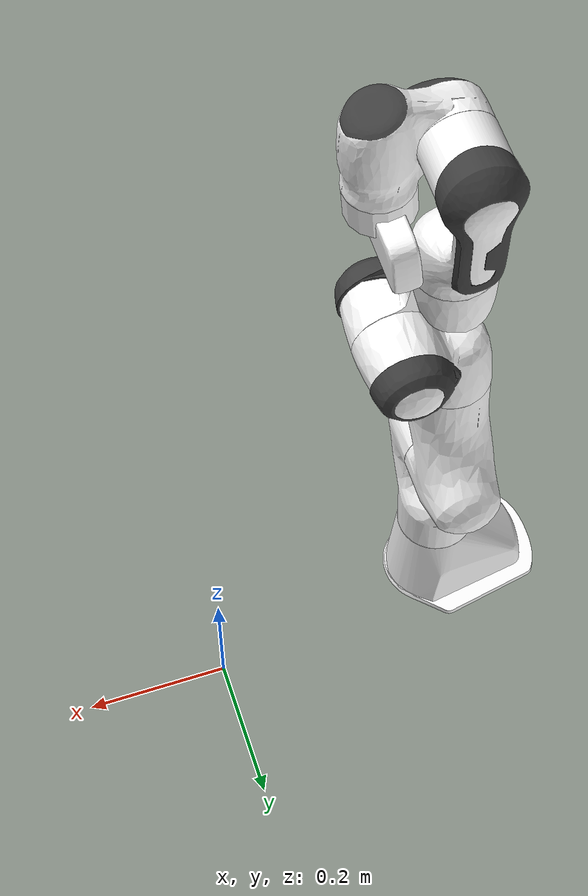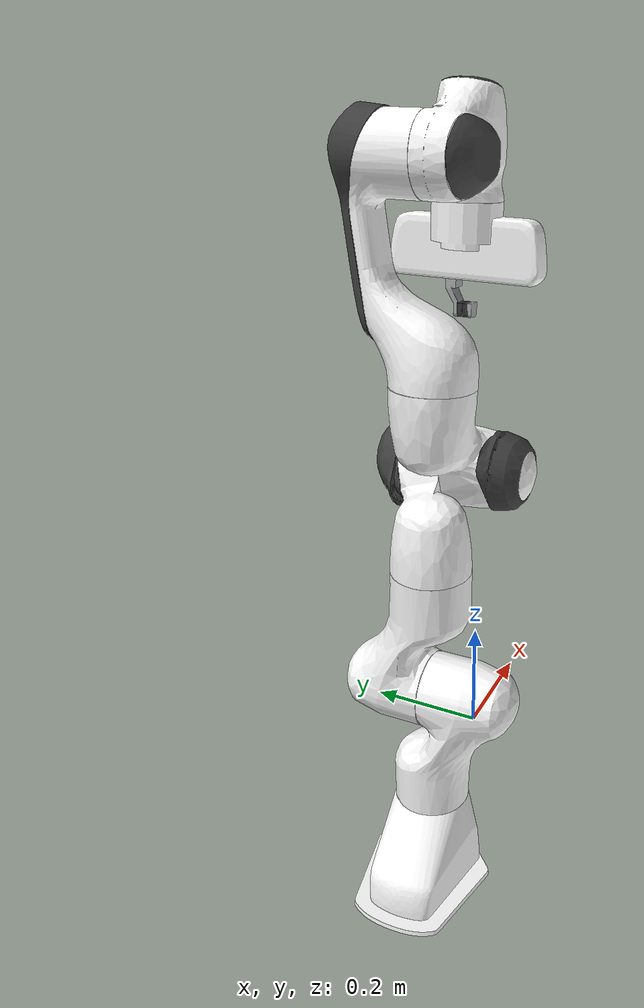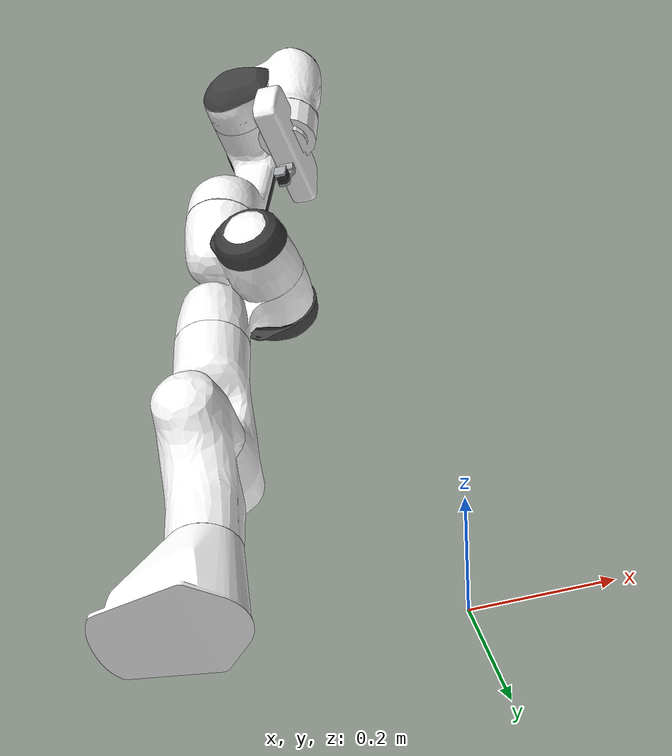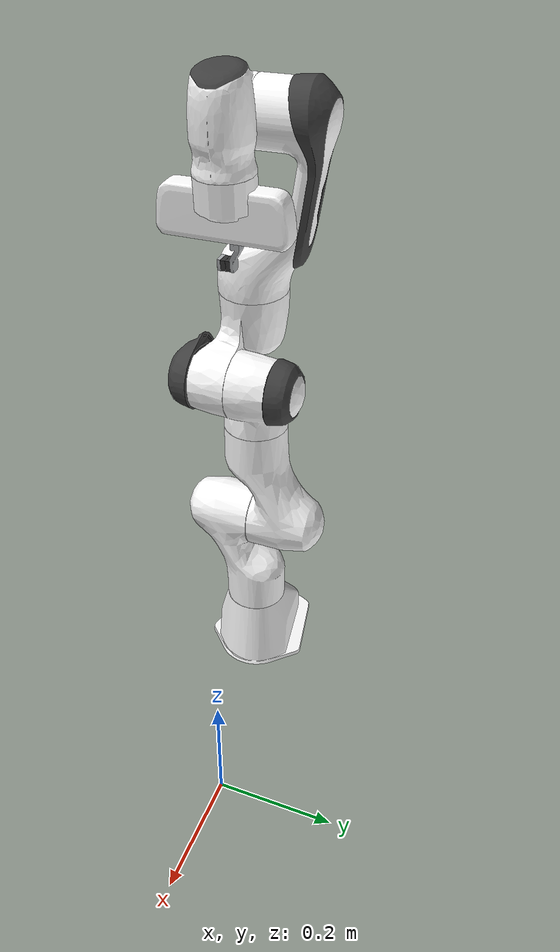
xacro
<?xml version="1.0"?>
<robot xmlns:xacro="http://www.ros.org/wiki/xacro" name="Franka">
    <xacro:arg name="initial_positions_file" default="initial_positions.yaml" />

    <!-- Import Franka urdf file -->
    <xacro:include filename="$(find coppelia_control)/urdf/Franka.urdf" />

    <!-- Import control_xacro -->
    <xacro:include filename="Franka.ros2_control.xacro" />

    <xacro:Franka_ros2_control name="FakeSystem" initial_positions_file="$(arg initial_positions_file)"/>

</robot>

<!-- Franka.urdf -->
<robot name="Franka">
    <link name="robot_base">
        <collision name="Franka">
            <origin xyz="-0.391000 -0.075000 0.070000" rpy="-3.141593 3.141593 -3.141593" />
            <geometry>
                <mesh filename="package://coppelia_control/meshes/Franka_robot_base_coll_1.dae" />
            </geometry>
        </collision>
        <visual name="link_0">
            <origin xyz="-0.391000 -0.075000 0.070000" rpy="-3.141593 3.141593 -3.141593" />
            <geometry>
                <mesh filename="package://coppelia_control/meshes/Franka_link_0_vis_1.dae" />
            </geometry>
            <material name="link_0_material">
                <color rgba="1.000000 1.000000 1.000000 1.0" />
            </material>
        </visual>
    </link>
    <joint type="revolute" name="joint_0">
        <axis xyz="0 0 1" />
        <limit upper="2.8972465991974" lower="-2.8972465991974" effort="87.0" velocity="2.1749997138977" />
        <parent link="robot_base" />
        <child link="link1_resp" />
        <origin xyz="-0.349729 -0.074988 0.000000" rpy="-3.141593 3.141593 -3.141593" />
    </joint>
    <link name="link1_resp">
        <inertial>
            <origin xyz="0.000027 -0.031145 0.262891" rpy="-3.141593 3.141593 -3.141593" />
            <inertia izz="0.096472146190744" ixz="1.3128335716866e-05" iyz="0.046543293301451" iyy="0.20795149177852" ixy="1.8036869099987e-05" ixx="0.23965416449794" />
            <mass value="4.9706840515137" />
        </inertial>
        <collision name="link1_resp">
            <origin xyz="0.000023 -0.037262 0.263822" rpy="-3.141593 3.141593 -3.141593" />
            <geometry>
                <mesh filename="package://coppelia_control/meshes/Franka_link1_resp_coll_1.dae" />
            </geometry>
        </collision>
        <collision name="link1_resp">
            <origin xyz="0.000023 -0.037262 0.263822" rpy="-3.141593 3.141593 -3.141593" />
            <geometry>
                <mesh filename="package://coppelia_control/meshes/Franka_link1_resp_coll_2.dae" />
            </geometry>
        </collision>
        <collision name="link1_resp">
            <origin xyz="0.000023 -0.037262 0.263822" rpy="-3.141593 3.141593 -3.141593" />
            <geometry>
                <mesh filename="package://coppelia_control/meshes/Franka_link1_resp_coll_3.dae" />
            </geometry>
        </collision>
        <collision name="link1_resp">
            <origin xyz="0.000023 -0.037262 0.263822" rpy="-3.141593 3.141593 -3.141593" />
            <geometry>
                <mesh filename="package://coppelia_control/meshes/Franka_link1_resp_coll_4.dae" />
            </geometry>
        </collision>
        <visual name="link_1">
            <origin xyz="0.000023 -0.037242 0.263855" rpy="-3.141593 3.141593 -3.141593" />
            <geometry>
                <mesh filename="package://coppelia_control/meshes/Franka_link_1_vis_1.dae" />
            </geometry>
            <material name="link_1_material">
                <color rgba="1.000000 1.000000 1.000000 1.0" />
            </material>
        </visual>
    </link>
    <joint type="revolute" name="joint_1">
        <axis xyz="0 0 1" />
        <limit upper="1.7627825737" lower="-1.7627825737" effort="87.0" velocity="2.1749997138977" />
        <parent link="link1_resp" />
        <child link="link2_resp" />
        <origin xyz="-0.000000 -0.000000 0.333000" rpy="1.570796 3.141593 3.141593" />
    </joint>
    <link name="link2_resp">
        <inertial>
            <origin xyz="0.000012 -0.070031 0.031073" rpy="-1.570796 3.141593 -3.141593" />
            <inertia izz="0.0083947222563338" ixz="-9.6899135443004e-07" iyz="0.0040788476591549" iyy="0.018332235221749" ixy="4.6746993616892e-06" ixx="0.021097005907894" />
            <mass value="0.64692598581314" />
        </inertial>
        <collision name="link2_resp">
            <origin xyz="0.000013 -0.069030 0.037184" rpy="-1.570796 3.141593 -3.141593" />
            <geometry>
                <mesh filename="package://coppelia_control/meshes/Franka_link2_resp_coll_1.dae" />
            </geometry>
        </collision>
        <collision name="link2_resp">
            <origin xyz="0.000013 -0.069030 0.037184" rpy="-1.570796 3.141593 -3.141593" />
            <geometry>
                <mesh filename="package://coppelia_control/meshes/Franka_link2_resp_coll_2.dae" />
            </geometry>
        </collision>
        <visual name="link_2">
            <origin xyz="-0.000003 -0.069076 0.037184" rpy="-1.570796 3.141593 -3.141593" />
            <geometry>
                <mesh filename="package://coppelia_control/meshes/Franka_link_2_vis_1.dae" />
            </geometry>
            <material name="link_2_material">
                <color rgba="1.000000 1.000000 1.000000 1.0" />
            </material>
        </visual>
    </link>
    <joint type="revolute" name="joint_2">
        <axis xyz="0 0 1" />
        <limit upper="2.8972465991974" lower="-2.8972465991974" effort="87.0" velocity="2.1749997138977" />
        <parent link="link2_resp" />
        <child link="link3_resp" />
        <origin xyz="-0.000000 0.000000 0.000000" rpy="-1.570797 3.141593 -3.141593" />
    </joint>
    <link name="link3_resp">
        <inertial>
            <origin xyz="0.044418 0.025018 0.276461" rpy="-3.141592 3.141593 3.141593" />
            <inertia izz="0.037313700213202" ixz="-0.012283585683442" iyz="-0.0066345366154784" iyy="0.044600332011806" ixy="-0.0071662360347711" ixx="0.037043165158734" />
            <mass value="3.2286040782928" />
        </inertial>
        <collision name="link3_resp">
            <origin xyz="0.041373 0.028168 0.281765" rpy="-3.141592 3.141593 3.141593" />
            <geometry>
                <mesh filename="package://coppelia_control/meshes/Franka_link3_resp_coll_1.dae" />
            </geometry>
        </collision>
        <collision name="link3_resp">
            <origin xyz="0.041373 0.028168 0.281765" rpy="-3.141592 3.141593 3.141593" />
            <geometry>
                <mesh filename="package://coppelia_control/meshes/Franka_link3_resp_coll_2.dae" />
            </geometry>
        </collision>
        <collision name="link3_resp">
            <origin xyz="0.041373 0.028168 0.281765" rpy="-3.141592 3.141593 3.141593" />
            <geometry>
                <mesh filename="package://coppelia_control/meshes/Franka_link3_resp_coll_3.dae" />
            </geometry>
        </collision>
        <collision name="link3_resp">
            <origin xyz="0.041373 0.028168 0.281765" rpy="-3.141592 3.141593 3.141593" />
            <geometry>
                <mesh filename="package://coppelia_control/meshes/Franka_link3_resp_coll_4.dae" />
            </geometry>
        </collision>
        <visual name="link_3">
            <origin xyz="0.041158 0.028089 0.281656" rpy="-3.141592 3.141593 -3.141593" />
            <geometry>
                <mesh filename="package://coppelia_control/meshes/Franka_link_3_vis_1.dae" />
            </geometry>
            <material name="link_3_material">
                <color rgba="1.000000 1.000000 1.000000 1.0" />
            </material>
        </visual>
        <visual name="link_3">
            <origin xyz="0.041158 0.028089 0.281656" rpy="-3.141592 3.141593 -3.141593" />
            <geometry>
                <mesh filename="package://coppelia_control/meshes/Franka_link_3_vis_2.dae" />
            </geometry>
            <material name="link_3_material">
                <color rgba="0.250000 0.250000 0.250000 1.0" />
            </material>
        </visual>
    </link>
    <joint type="revolute" name="joint_3">
        <axis xyz="0 0 1" />
        <limit upper="0.0" lower="-3.0019662380219" effort="87.0" velocity="2.1749997138977" />
        <parent link="link3_resp" />
        <child link="link4_resp" />
        <origin xyz="0.082500 -0.000000 0.316000" rpy="-1.570796 3.141593 -3.141592" />
    </joint>
    <link name="link4_resp">
        <inertial>
            <origin xyz="-0.036035 0.041072 0.024354" rpy="1.570796 3.141593 3.071779" />
            <inertia izz="0.047764716548773" ixz="0.016026606898086" iyz="-0.0086501440884625" iyy="0.05816570900911" ixy="0.0091601974989418" ixx="0.04844892193307" />
            <mass value="3.5878949165344" />
        </inertial>
        <collision name="link4_resp">
            <origin xyz="-0.038916 0.036337 0.027506" rpy="1.570796 3.141593 3.071779" />
            <geometry>
                <mesh filename="package://coppelia_control/meshes/Franka_link4_resp_coll_1.dae" />
            </geometry>
        </collision>
        <collision name="link4_resp">
            <origin xyz="-0.038916 0.036337 0.027506" rpy="1.570796 3.141593 3.071779" />
            <geometry>
                <mesh filename="package://coppelia_control/meshes/Franka_link4_resp_coll_2.dae" />
            </geometry>
        </collision>
        <collision name="link4_resp">
            <origin xyz="-0.038916 0.036337 0.027506" rpy="1.570796 3.141593 3.071779" />
            <geometry>
                <mesh filename="package://coppelia_control/meshes/Franka_link4_resp_coll_3.dae" />
            </geometry>
        </collision>
        <collision name="link4_resp">
            <origin xyz="-0.038916 0.036337 0.027506" rpy="1.570796 3.141593 3.071779" />
            <geometry>
                <mesh filename="package://coppelia_control/meshes/Franka_link4_resp_coll_4.dae" />
            </geometry>
        </collision>
        <collision name="link4_resp">
            <origin xyz="-0.038916 0.036337 0.027506" rpy="1.570796 3.141593 3.071779" />
            <geometry>
                <mesh filename="package://coppelia_control/meshes/Franka_link4_resp_coll_5.dae" />
            </geometry>
        </collision>
        <collision name="link4_resp">
            <origin xyz="-0.038916 0.036337 0.027506" rpy="1.570796 3.141593 3.071779" />
            <geometry>
                <mesh filename="package://coppelia_control/meshes/Franka_link4_resp_coll_6.dae" />
            </geometry>
        </collision>
        <visual name="link_4">
            <origin xyz="-0.039111 0.036345 0.027485" rpy="1.570796 3.141593 3.071779" />
            <geometry>
                <mesh filename="package://coppelia_control/meshes/Franka_link_4_vis_1.dae" />
            </geometry>
            <material name="link_4_material">
                <color rgba="1.000000 1.000000 1.000000 1.0" />
            </material>
        </visual>
        <visual name="link_4">
            <origin xyz="-0.039111 0.036345 0.027485" rpy="1.570796 3.141593 3.071779" />
            <geometry>
                <mesh filename="package://coppelia_control/meshes/Franka_link_4_vis_2.dae" />
            </geometry>
            <material name="link_4_material">
                <color rgba="0.250000 0.250000 0.250000 1.0" />
            </material>
        </visual>
    </link>
    <joint type="revolute" name="joint_4">
        <axis xyz="0 0 1" />
        <limit upper="2.8972465991974" lower="-2.8972465991974" effort="12.0" velocity="2.610000371933" />
        <parent link="link4_resp" />
        <child link="link5_resp" />
        <origin xyz="-0.055513 0.388820 -0.000000" rpy="1.570796 3.141593 3.071779" />
    </joint>
    <link name="link5_resp">
        <inertial>
            <origin xyz="0.000101 0.038651 -0.110916" rpy="3.141593 3.141592 3.141592" />
            <inertia izz="0.010430599214868" ixz="-2.672442414716e-05" iyz="-0.0078141474579038" iyy="0.036230106859883" ixy="6.5734913571839e-07" ixx="0.03988537400492" />
            <mass value="1.2259459495544" />
        </inertial>
        <collision name="link5_resp">
            <origin xyz="0.000168 0.037213 -0.105096" rpy="3.141593 3.141592 3.141592" />
            <geometry>
                <mesh filename="package://coppelia_control/meshes/Franka_link5_resp_coll_1.dae" />
            </geometry>
        </collision>
        <collision name="link5_resp">
            <origin xyz="0.000168 0.037213 -0.105096" rpy="3.141593 3.141592 3.141592" />
            <geometry>
                <mesh filename="package://coppelia_control/meshes/Franka_link5_resp_coll_2.dae" />
            </geometry>
        </collision>
        <collision name="link5_resp">
            <origin xyz="0.000168 0.037213 -0.105096" rpy="3.141593 3.141592 3.141592" />
            <geometry>
                <mesh filename="package://coppelia_control/meshes/Franka_link5_resp_coll_3.dae" />
            </geometry>
        </collision>
        <collision name="link5_resp">
            <origin xyz="0.000168 0.037213 -0.105096" rpy="3.141593 3.141592 3.141592" />
            <geometry>
                <mesh filename="package://coppelia_control/meshes/Franka_link5_resp_coll_4.dae" />
            </geometry>
        </collision>
        <collision name="link5_resp">
            <origin xyz="0.000168 0.037213 -0.105096" rpy="3.141593 3.141592 3.141592" />
            <geometry>
                <mesh filename="package://coppelia_control/meshes/Franka_link5_resp_coll_5.dae" />
            </geometry>
        </collision>
        <collision name="link5_resp">
            <origin xyz="0.000168 0.037213 -0.105096" rpy="3.141593 3.141592 3.141592" />
            <geometry>
                <mesh filename="package://coppelia_control/meshes/Franka_link5_resp_coll_6.dae" />
            </geometry>
        </collision>
        <collision name="link5_resp">
            <origin xyz="0.000168 0.037213 -0.105096" rpy="3.141593 3.141592 3.141592" />
            <geometry>
                <mesh filename="package://coppelia_control/meshes/Franka_link5_resp_coll_7.dae" />
            </geometry>
        </collision>
        <collision name="link5_resp">
            <origin xyz="0.000168 0.037213 -0.105096" rpy="3.141593 3.141592 3.141592" />
            <geometry>
                <mesh filename="package://coppelia_control/meshes/Franka_link5_resp_coll_8.dae" />
            </geometry>
        </collision>
        <collision name="link5_resp">
            <origin xyz="0.000168 0.037213 -0.105096" rpy="3.141593 3.141592 3.141592" />
            <geometry>
                <mesh filename="package://coppelia_control/meshes/Franka_link5_resp_coll_9.dae" />
            </geometry>
        </collision>
        <visual name="link_5">
            <origin xyz="-0.000025 0.037473 -0.105129" rpy="3.141593 3.141592 3.141592" />
            <geometry>
                <mesh filename="package://coppelia_control/meshes/Franka_link_5_vis_1.dae" />
            </geometry>
            <material name="link_5_material">
                <color rgba="1.000000 1.000000 1.000000 1.0" />
            </material>
        </visual>
        <visual name="link_5">
            <origin xyz="-0.000025 0.037473 -0.105129" rpy="3.141593 3.141592 3.141592" />
            <geometry>
                <mesh filename="package://coppelia_control/meshes/Franka_link_5_vis_2.dae" />
            </geometry>
            <material name="link_5_material">
                <color rgba="0.250000 0.250000 0.250000 1.0" />
            </material>
        </visual>
    </link>
    <joint type="revolute" name="joint_5">
        <axis xyz="0 0 1" />
        <limit upper="3.7524577584118" lower="-0.017453292384744" effort="12.0" velocity="2.610000371933" />
        <parent link="link5_resp" />
        <child link="link6_resp" />
        <origin xyz="-0.000000 -0.000000 0.000000" rpy="-1.570796 3.141593 -3.141593" />
    </joint>
    <link name="link6_resp">
        <inertial>
            <origin xyz="0.050819 0.005558 0.005395" rpy="1.570796 3.141593 3.141593" />
            <inertia izz="0.0070729035771789" ixz="-0.00030740988325929" iyz="-6.1476550160376e-05" iyy="0.008643924526682" ixy="-0.00057744119112155" ixx="0.0046587251169735" />
            <mass value="1.6665550470352" />
        </inertial>
        <collision name="link6_resp">
            <origin xyz="0.042191 0.013607 0.005347" rpy="1.570796 3.141593 3.141593" />
            <geometry>
                <mesh filename="package://coppelia_control/meshes/Franka_link6_resp_coll_1.dae" />
            </geometry>
        </collision>
        <collision name="link6_resp">
            <origin xyz="0.042191 0.013607 0.005347" rpy="1.570796 3.141593 3.141593" />
            <geometry>
                <mesh filename="package://coppelia_control/meshes/Franka_link6_resp_coll_2.dae" />
            </geometry>
        </collision>
        <collision name="link6_resp">
            <origin xyz="0.042191 0.013607 0.005347" rpy="1.570796 3.141593 3.141593" />
            <geometry>
                <mesh filename="package://coppelia_control/meshes/Franka_link6_resp_coll_3.dae" />
            </geometry>
        </collision>
        <collision name="link6_resp">
            <origin xyz="0.042191 0.013607 0.005347" rpy="1.570796 3.141593 3.141593" />
            <geometry>
                <mesh filename="package://coppelia_control/meshes/Franka_link6_resp_coll_4.dae" />
            </geometry>
        </collision>
        <collision name="link6_resp">
            <origin xyz="0.042191 0.013607 0.005347" rpy="1.570796 3.141593 3.141593" />
            <geometry>
                <mesh filename="package://coppelia_control/meshes/Franka_link6_resp_coll_5.dae" />
            </geometry>
        </collision>
        <collision name="link6_resp">
            <origin xyz="0.042191 0.013607 0.005347" rpy="1.570796 3.141593 3.141593" />
            <geometry>
                <mesh filename="package://coppelia_control/meshes/Franka_link6_resp_coll_6.dae" />
            </geometry>
        </collision>
        <collision name="link6_resp">
            <origin xyz="0.042191 0.013607 0.005347" rpy="1.570796 3.141593 3.141593" />
            <geometry>
                <mesh filename="package://coppelia_control/meshes/Franka_link6_resp_coll_7.dae" />
            </geometry>
        </collision>
        <collision name="link6_resp">
            <origin xyz="0.042191 0.013607 0.005347" rpy="1.570796 3.141593 3.141593" />
            <geometry>
                <mesh filename="package://coppelia_control/meshes/Franka_link6_resp_coll_8.dae" />
            </geometry>
        </collision>
        <collision name="link6_resp">
            <origin xyz="0.042191 0.013607 0.005347" rpy="1.570796 3.141593 3.141593" />
            <geometry>
                <mesh filename="package://coppelia_control/meshes/Franka_link6_resp_coll_9.dae" />
            </geometry>
        </collision>
        <collision name="link6_resp">
            <origin xyz="0.042191 0.013607 0.005347" rpy="1.570796 3.141593 3.141593" />
            <geometry>
                <mesh filename="package://coppelia_control/meshes/Franka_link6_resp_coll_10.dae" />
            </geometry>
        </collision>
        <collision name="link6_resp">
            <origin xyz="0.042191 0.013607 0.005347" rpy="1.570796 3.141593 3.141593" />
            <geometry>
                <mesh filename="package://coppelia_control/meshes/Franka_link6_resp_coll_11.dae" />
            </geometry>
        </collision>
        <collision name="link6_resp">
            <origin xyz="0.042191 0.013607 0.005347" rpy="1.570796 3.141593 3.141593" />
            <geometry>
                <mesh filename="package://coppelia_control/meshes/Franka_link6_resp_coll_12.dae" />
            </geometry>
        </collision>
        <collision name="link6_resp">
            <origin xyz="0.042191 0.013607 0.005347" rpy="1.570796 3.141593 3.141593" />
            <geometry>
                <mesh filename="package://coppelia_control/meshes/Franka_link6_resp_coll_13.dae" />
            </geometry>
        </collision>
        <collision name="link6_resp">
            <origin xyz="0.042191 0.013607 0.005347" rpy="1.570796 3.141593 3.141593" />
            <geometry>
                <mesh filename="package://coppelia_control/meshes/Franka_link6_resp_coll_14.dae" />
            </geometry>
        </collision>
        <collision name="link6_resp">
            <origin xyz="0.042191 0.013607 0.005347" rpy="1.570796 3.141593 3.141593" />
            <geometry>
                <mesh filename="package://coppelia_control/meshes/Franka_link6_resp_coll_15.dae" />
            </geometry>
        </collision>
        <collision name="link6_resp">
            <origin xyz="0.042191 0.013607 0.005347" rpy="1.570796 3.141593 3.141593" />
            <geometry>
                <mesh filename="package://coppelia_control/meshes/Franka_link6_resp_coll_16.dae" />
            </geometry>
        </collision>
        <visual name="link_6">
            <origin xyz="0.042086 0.013418 0.005372" rpy="1.570796 3.141593 3.141592" />
            <geometry>
                <mesh filename="package://coppelia_control/meshes/Franka_link_6_vis_1.dae" />
            </geometry>
            <material name="link_6_material">
                <color rgba="1.000000 1.000000 1.000000 1.0" />
            </material>
        </visual>
        <visual name="link_6">
            <origin xyz="0.042086 0.013418 0.005372" rpy="1.570796 3.141593 3.141592" />
            <geometry>
                <mesh filename="package://coppelia_control/meshes/Franka_link_6_vis_2.dae" />
            </geometry>
            <material name="link_6_material">
                <color rgba="0.250000 0.250000 0.250000 1.0" />
            </material>
        </visual>
    </link>
    <joint type="revolute" name="joint_6">
        <axis xyz="0 0 1" />
        <limit upper="2.8972465991974" lower="-2.8972465991974" effort="12.0" velocity="2.610000371933" />
        <parent link="link6_resp" />
        <child link="link7_resp_top" />
        <origin xyz="0.088000 0.000000 -0.000000" rpy="-1.570796 3.141592 3.141593" />
    </joint>
    <link name="link7_resp_top">
        <inertial>
            <origin xyz="-0.000077 -0.000876 0.078618" rpy="-0.000000 3.141593 -3.141592" />
            <inertia izz="0.01180331651387" ixz="7.00227187462e-07" iyz="-9.1760218741593e-08" iyy="0.0088670122123097" ixy="7.6321250755392e-11" ixx="0.0088670116631003" />
            <mass value="0.73552197217941" />
        </inertial>
        <collision name="link7_resp_top">
            <origin xyz="-0.000057 -0.000873 0.103159" rpy="0.000000 3.141593 -0.595144" />
            <geometry>
                <cylinder radius="0.030879393219948" length="0.0095007419586182" />
            </geometry>
        </collision>
        <collision name="link7_resp_top">
            <origin xyz="-0.000079 -0.000876 0.076009" rpy="-0.000002 3.141594 -2.065463" />
            <geometry>
                <cylinder radius="0.043132938444614" length="0.045800685882568" />
            </geometry>
        </collision>
        <visual name="link_7_top">
            <origin xyz="-0.000079 -0.000877 0.080509" rpy="-0.000000 3.141593 -3.141592" />
            <geometry>
                <mesh filename="package://coppelia_control/meshes/Franka_link_7_top_vis_1.dae" />
            </geometry>
            <material name="link_7_top_material">
                <color rgba="1.000000 1.000000 1.000000 1.0" />
            </material>
        </visual>
    </link>
    <joint type="fixed" name="connection">
        <axis xyz="0 0 1" />
        <parent link="link7_resp_top" />
        <child link="FrankaGripper" />
        <origin xyz="-0.000271 0.000012 0.107001" rpy="3.141593 3.141593 -3.141592" />
    </joint>
    <link name="FrankaGripper">
        <inertial>
            <origin xyz="0.007993 0.005362 0.000301" rpy="3.141593 3.141593 -3.141593" />
            <inertia izz="0.0005356164140933" ixz="6.4988166909013e-18" iyz="-3.041173254942e-18" iyy="0.0005513698709592" ixy="-0.000236301420585" ixx="0.00055136998466875" />
            <mass value="0.23000000417233" />
        </inertial>
        <collision name="FrankaGripper">
            <origin xyz="0.000000 0.000000 0.000000" rpy="3.141593 3.141593 -3.141593" />
            <geometry>
                <mesh filename="package://coppelia_control/meshes/Franka_FrankaGripper_coll_1.dae" />
            </geometry>
        </collision>
        <collision name="FrankaGripper">
            <origin xyz="0.000000 0.000000 0.000000" rpy="3.141593 3.141593 -3.141593" />
            <geometry>
                <mesh filename="package://coppelia_control/meshes/Franka_FrankaGripper_coll_2.dae" />
            </geometry>
        </collision>
        <collision name="FrankaGripper">
            <origin xyz="0.000000 0.000000 0.000000" rpy="3.141593 3.141593 -3.141593" />
            <geometry>
                <mesh filename="package://coppelia_control/meshes/Franka_FrankaGripper_coll_3.dae" />
            </geometry>
        </collision>
        <visual name="visible">
            <origin xyz="0.000000 0.001224 -0.002953" rpy="3.141593 3.141593 -3.141593" />
            <geometry>
                <mesh filename="package://coppelia_control/meshes/Franka_visible_vis_1.dae" />
            </geometry>
            <material name="visible_material">
                <color rgba="1.000000 1.000000 1.000000 1.0" />
            </material>
        </visual>
    </link>
    <joint type="prismatic" name="joint_7">
        <axis xyz="0 0 1" />
        <limit upper="0.041000001132488" lower="0.0" effort="20.0" velocity="0.10000000149012" />
        <parent link="FrankaGripper" />
        <child link="leftFinger" />
        <origin xyz="0.000168 0.001495 0.074931" rpy="-1.571080 3.141812 3.141556" />
    </joint>
    <link name="leftFinger">
        <inertial>
            <origin xyz="0.000040 -0.024567 0.012277" rpy="-2.915859 4.704142 1.342121" />
            <inertia izz="5.5836018162053e-05" ixz="6.9071240866037e-06" iyz="2.6465682920481e-07" iyy="0.00018639074698225" ixy="-1.0258588401084e-07" ixx="0.00018852426788335" />
            <mass value="0.125" />
        </inertial>
        <collision name="leftFinger">
            <origin xyz="0.000080 -0.017999 0.012501" rpy="-2.915859 4.704142 1.342121" />
            <geometry>
                <mesh filename="package://coppelia_control/meshes/Franka_leftFinger_coll_1.dae" />
            </geometry>
        </collision>
        <collision name="leftFinger">
            <origin xyz="0.000080 -0.017999 0.012501" rpy="-2.915859 4.704142 1.342121" />
            <geometry>
                <mesh filename="package://coppelia_control/meshes/Franka_leftFinger_coll_2.dae" />
            </geometry>
        </collision>
        <collision name="leftFinger">
            <origin xyz="0.000080 -0.017999 0.012501" rpy="-2.915859 4.704142 1.342121" />
            <geometry>
                <mesh filename="package://coppelia_control/meshes/Franka_leftFinger_coll_3.dae" />
            </geometry>
        </collision>
        <collision name="leftFinger">
            <origin xyz="0.000080 -0.017999 0.012501" rpy="-2.915859 4.704142 1.342121" />
            <geometry>
                <mesh filename="package://coppelia_control/meshes/Franka_leftFinger_coll_4.dae" />
            </geometry>
        </collision>
        <collision name="leftFinger">
            <origin xyz="0.000080 -0.017999 0.012501" rpy="-2.915859 4.704142 1.342121" />
            <geometry>
                <mesh filename="package://coppelia_control/meshes/Franka_leftFinger_coll_5.dae" />
            </geometry>
        </collision>
        <collision name="leftFinger">
            <origin xyz="0.000080 -0.017999 0.012501" rpy="-2.915859 4.704142 1.342121" />
            <geometry>
                <mesh filename="package://coppelia_control/meshes/Franka_leftFinger_coll_6.dae" />
            </geometry>
        </collision>
        <collision name="leftFinger">
            <origin xyz="0.000080 -0.017999 0.012501" rpy="-2.915859 4.704142 1.342121" />
            <geometry>
                <mesh filename="package://coppelia_control/meshes/Franka_leftFinger_coll_7.dae" />
            </geometry>
        </collision>
        <collision name="leftFinger">
            <origin xyz="0.000080 -0.017999 0.012501" rpy="-2.915859 4.704142 1.342121" />
            <geometry>
                <mesh filename="package://coppelia_control/meshes/Franka_leftFinger_coll_8.dae" />
            </geometry>
        </collision>
        <collision name="leftFinger">
            <origin xyz="0.000080 -0.017999 0.012501" rpy="-2.915859 4.704142 1.342121" />
            <geometry>
                <mesh filename="package://coppelia_control/meshes/Franka_leftFinger_coll_9.dae" />
            </geometry>
        </collision>
        <visual name="leftFinger_visible">
            <origin xyz="0.000031 -0.017953 0.012297" rpy="1.571080 3.141556 3.141374" />
            <geometry>
                <mesh filename="package://coppelia_control/meshes/Franka_leftFinger_visible_vis_1.dae" />
            </geometry>
            <material name="leftFinger_visible_material">
                <color rgba="0.660000 0.670000 0.680000 1.0" />
            </material>
        </visual>
    </link>
    <joint type="fixed" name="leftFingerPad_connection">
        <axis xyz="0 0 1" />
        <parent link="leftFinger" />
        <child link="leftPad" />
        <origin xyz="0.000028 0.000055 0.006728" rpy="-0.000001 3.141593 -1.570796" />
    </joint>
    <link name="leftPad">
        <inertial>
            <origin xyz="-0.000346 0.000007 0.002414" rpy="1.575077 1.575863 0.007296" />
            <inertia izz="0.00010804066386562" ixz="4.1543267577368e-08" iyz="2.2431666371765e-08" iyy="0.00010830756544703" ixy="1.6213889016144e-07" ixx="0.00016691092146122" />
            <mass value="0.125" />
        </inertial>
        <collision name="leftPad">
            <origin xyz="-0.000078 0.000000 0.002456" rpy="1.575077 1.575863 0.007296" />
            <geometry>
                <mesh filename="package://coppelia_control/meshes/Franka_leftPad_coll_1.dae" />
            </geometry>
        </collision>
        <visual name="leftPad_visible">
            <origin xyz="-0.000106 -0.000024 0.002434" rpy="-1.570513 3.141630 -1.570577" />
            <geometry>
                <mesh filename="package://coppelia_control/meshes/Franka_leftPad_visible_vis_1.dae" />
            </geometry>
            <material name="leftPad_visible_material">
                <color rgba="0.200000 0.200000 0.200000 1.0" />
            </material>
        </visual>
    </link>
    <joint type="prismatic" name="Open_CloseJoint">
        <axis xyz="0 0 1" />
        <limit upper="0.082000002264977" lower="0.0" effort="20.0" velocity="10.0" />
        <parent link="leftFinger" />
        <child link="rightFinger" />
        <origin xyz="-0.000000 -0.000000 -0.000000" rpy="0.000033 3.141592 0.000000" />
    </joint>
    <link name="rightFinger">
        <inertial>
            <origin xyz="0.000022 -0.024520 0.011668" rpy="3.062975 1.579239 -1.647380" />
            <inertia izz="5.5596183740278e-05" ixz="-5.2355363902135e-06" iyz="-6.110250389809e-08" iyy="0.00018660159563509" ixy="3.8961991153265e-08" ixx="0.00018875818524776" />
            <mass value="0.125" />
        </inertial>
        <collision name="rightFinger">
            <origin xyz="0.000006 -0.017987 0.011625" rpy="3.062975 1.579239 -1.647380" />
            <geometry>
                <mesh filename="package://coppelia_control/meshes/Franka_rightFinger_coll_1.dae" />
            </geometry>
        </collision>
        <collision name="rightFinger">
            <origin xyz="0.000006 -0.017987 0.011625" rpy="3.062975 1.579239 -1.647380" />
            <geometry>
                <mesh filename="package://coppelia_control/meshes/Franka_rightFinger_coll_2.dae" />
            </geometry>
        </collision>
        <collision name="rightFinger">
            <origin xyz="0.000006 -0.017987 0.011625" rpy="3.062975 1.579239 -1.647380" />
            <geometry>
                <mesh filename="package://coppelia_control/meshes/Franka_rightFinger_coll_3.dae" />
            </geometry>
        </collision>
        <collision name="rightFinger">
            <origin xyz="0.000006 -0.017987 0.011625" rpy="3.062975 1.579239 -1.647380" />
            <geometry>
                <mesh filename="package://coppelia_control/meshes/Franka_rightFinger_coll_4.dae" />
            </geometry>
        </collision>
        <collision name="rightFinger">
            <origin xyz="0.000006 -0.017987 0.011625" rpy="3.062975 1.579239 -1.647380" />
            <geometry>
                <mesh filename="package://coppelia_control/meshes/Franka_rightFinger_coll_5.dae" />
            </geometry>
        </collision>
        <collision name="rightFinger">
            <origin xyz="0.000006 -0.017987 0.011625" rpy="3.062975 1.579239 -1.647380" />
            <geometry>
                <mesh filename="package://coppelia_control/meshes/Franka_rightFinger_coll_6.dae" />
            </geometry>
        </collision>
        <collision name="rightFinger">
            <origin xyz="0.000006 -0.017987 0.011625" rpy="3.062975 1.579239 -1.647380" />
            <geometry>
                <mesh filename="package://coppelia_control/meshes/Franka_rightFinger_coll_7.dae" />
            </geometry>
        </collision>
        <collision name="rightFinger">
            <origin xyz="0.000006 -0.017987 0.011625" rpy="3.062975 1.579239 -1.647380" />
            <geometry>
                <mesh filename="package://coppelia_control/meshes/Franka_rightFinger_coll_8.dae" />
            </geometry>
        </collision>
        <collision name="rightFinger">
            <origin xyz="0.000006 -0.017987 0.011625" rpy="3.062975 1.579239 -1.647380" />
            <geometry>
                <mesh filename="package://coppelia_control/meshes/Franka_rightFinger_coll_9.dae" />
            </geometry>
        </collision>
        <visual name="rightFinger_visible">
            <origin xyz="0.000040 -0.018035 0.011413" rpy="-1.570480 3.141630 0.000219" />
            <geometry>
                <mesh filename="package://coppelia_control/meshes/Franka_rightFinger_visible_vis_1.dae" />
            </geometry>
            <material name="rightFinger_visible_material">
                <color rgba="0.660000 0.670000 0.680000 1.0" />
            </material>
        </visual>
    </link>
    <joint type="fixed" name="rightFingerPad_connection">
        <axis xyz="0 0 1" />
        <parent link="rightFinger" />
        <child link="rightPad" />
        <origin xyz="-0.000102 0.000143 0.006578" rpy="0.000034 3.124728 1.574869" />
    </joint>
    <link name="rightPad">
        <inertial>
            <origin xyz="0.000346 -0.000006 0.002414" rpy="1.567081 4.707277 0.006731" />
            <inertia izz="0.00010804302982103" ixz="4.1290464104407e-08" iyz="-1.963717353832e-08" iyy="0.00010830547761067" ixy="-1.6640883230316e-07" ixx="0.00016691049501109" />
            <mass value="0.125" />
        </inertial>
        <collision name="rightPad">
            <origin xyz="0.000078 0.000000 0.002457" rpy="1.567081 4.707277 0.006731" />
            <geometry>
                <mesh filename="package://coppelia_control/meshes/Franka_rightPad_coll_1.dae" />
            </geometry>
        </collision>
        <visual name="rightPad_visible">
            <origin xyz="0.000155 -0.000007 0.002420" rpy="1.587977 3.141586 -1.566943" />
            <geometry>
                <mesh filename="package://coppelia_control/meshes/Franka_rightPad_visible_vis_1.dae" />
            </geometry>
            <material name="rightPad_visible_material">
                <color rgba="0.200000 0.200000 0.200000 1.0" />
            </material>
        </visual>
    </link>
</robot>
